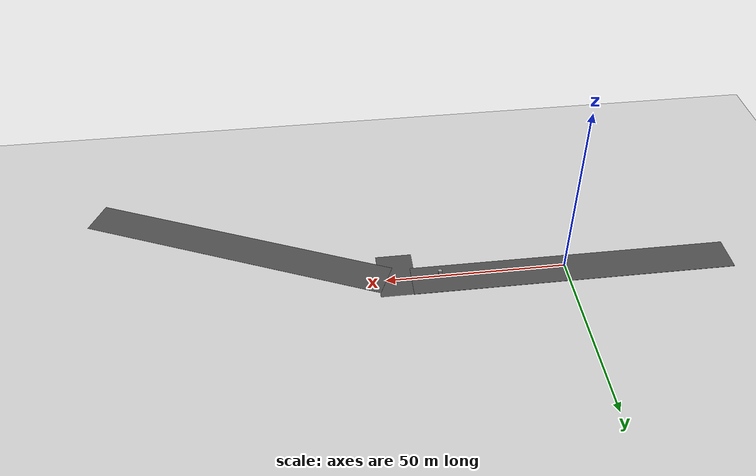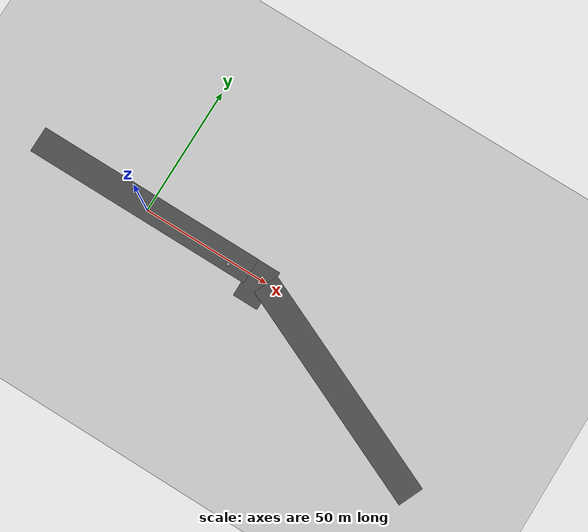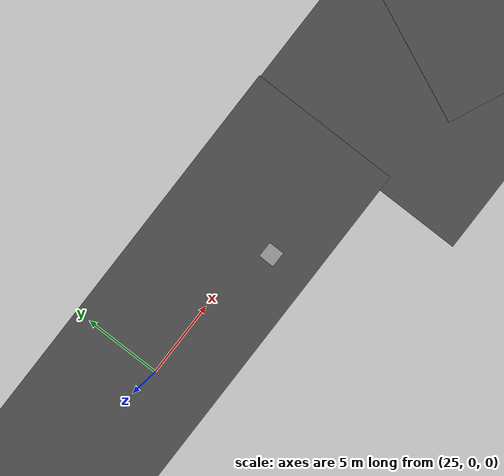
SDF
<sdf version="1.5">
 <world name="default">
  <light name="sun" type="directional">
   <pose>0 0 10 0 -0 0</pose>
   <diffuse>0.8 0.8 0.8 1</diffuse>
   <specular>0.2 0.2 0.2 1</specular>
   <attenuation>
    <range>1000</range>
    <constant>0.9</constant>
    <linear>0.01</linear>
    <quadratic>0.001</quadratic>
   </attenuation>
   <direction>-0.5 0.1 -0.9</direction>
  </light>
  <model name="test_model">
   <pose>34.9085 -1.21494 0.15 1e-06 -0 -0.002851</pose>
   <plugin name="test_plugin" filename="build/libCarPlugin.so"/>
   <link name="box_link">
    <pose>0 0 0.4 0 -0 0</pose>
    <visual name="visual">
     <geometry><box><size>1 1 1</size></box></geometry>
     <material>
      <lighting>1</lighting>
      <script><uri>file://media/materials/scripts/gazebo.material</uri><name>Gazebo/Grey</name></script>
      <ambient>0.3 0.3 0.3 1</ambient>
      <diffuse>0.7 0.7 0.7 1</diffuse>
      <specular>0.01 0.01 0.01 1</specular>
      <emissive>0 0 0 1</emissive>
      <shader type="pixel"/>
     </material>
    </visual>
    <collision name="box_collision">
     <geometry><box><size>1 1 1</size></box></geometry>
     <surface>
      <friction><ode><mu>1</mu><mu2>1</mu2><fdir1>0 0 0</fdir1><slip1>0</slip1><slip2>0</slip2></ode></friction>
      <bounce><restitution_coefficient>0</restitution_coefficient><threshold>1e+06</threshold></bounce>
      <contact>
       <collide_without_contact>0</collide_without_contact>
       <collide_without_contact_bitmask>1</collide_without_contact_bitmask>
       <collide_bitmask>1</collide_bitmask>
       <ode>
        <soft_cfm>0</soft_cfm>
        <soft_erp>0.2</soft_erp>
        <kp>1e+13</kp>
        <kd>1</kd>
        <max_vel>0.01</max_vel>
        <min_depth>0</min_depth>
       </ode>
       <bullet>
        <split_impulse>1</split_impulse>
        <split_impulse_penetration_threshold>-0.01</split_impulse_penetration_threshold>
        <soft_cfm>0</soft_cfm>
        <soft_erp>0.2</soft_erp>
        <kp>1e+13</kp>
        <kd>1</kd>
       </bullet>
      </contact>
     </surface>
    </collision>
    <inertial>
     <inertia><ixx>1</ixx><ixy>0</ixy><ixz>0</ixz><iyy>1</iyy><iyz>0</iyz><izz>1</izz></inertia>
     <mass>1</mass>
    </inertial>
   </link>
   <link name="lidar">
    <sensor name="lidar" type="ray">
     <plugin name="lidar_plugin" filename="build/liblidar.so"/>
     <pose>0.5 0 0.3 0 -0 0</pose>
     <ray>
      <scan>
       <horizontal>
        <samples>640</samples>
        <resolution>1</resolution>
        <min_angle>-1</min_angle>
        <max_angle>1</max_angle>
       </horizontal>
      </scan>
      <range><min>0.8</min><max>15</max><resolution>0.01</resolution></range>
      <noise><type>gaussian</type><mean>0</mean><stddev>0.01</stddev></noise>
     </ray>
     <always_on>1</always_on>
     <update_rate>30</update_rate>
     <visualize>1</visualize>
    </sensor>
    <visual name="lidar_visual">
     <geometry><mesh><uri>model://hokuyo/meshes/hokuyo.dae</uri></mesh></geometry>
     <material>
      <lighting>1</lighting>
      <script><uri>file://media/materials/scripts/gazebo.material</uri><name>Gazebo/Grey</name></script>
      <ambient>0.3 0.3 0.3 1</ambient>
      <diffuse>0.7 0.7 0.7 1</diffuse>
      <specular>0.01 0.01 0.01 1</specular>
      <emissive>0 0 0 1</emissive>
      <shader type="vertex"><normal_map>__default__</normal_map></shader>
     </material>
    </visual>
    <collision name="lidar_collision">
     <geometry><mesh><uri>model://hokuyo/meshes/hokuyo.dae</uri></mesh></geometry>
     <surface>
      <friction><ode><mu>1</mu><mu2>1</mu2><fdir1>0 0 0</fdir1><slip1>0</slip1><slip2>0</slip2></ode></friction>
      <bounce><restitution_coefficient>0</restitution_coefficient><threshold>1e+06</threshold></bounce>
      <contact>
       <collide_without_contact>0</collide_without_contact>
       <collide_without_contact_bitmask>1</collide_without_contact_bitmask>
       <collide_bitmask>1</collide_bitmask>
       <ode>
        <soft_cfm>0</soft_cfm>
        <soft_erp>0.2</soft_erp>
        <kp>1e+13</kp>
        <kd>1</kd>
        <max_vel>0.01</max_vel>
        <min_depth>0</min_depth>
       </ode>
       <bullet>
        <split_impulse>1</split_impulse>
        <split_impulse_penetration_threshold>-0.01</split_impulse_penetration_threshold>
        <soft_cfm>0</soft_cfm>
        <soft_erp>0.2</soft_erp>
        <kp>1e+13</kp>
        <kd>1</kd>
       </bullet>
      </contact>
     </surface>
    </collision>
    <inertial>
     <inertia><ixx>1</ixx><ixy>0</ixy><ixz>0</ixz><iyy>1</iyy><iyz>0</iyz><izz>1</izz></inertia>
     <mass>1</mass>
    </inertial>
   </link>
   <link name="camera_link">
    <pose>0.5 0 0.5 0 -0 0</pose>
    <sensor name="camera" type="multicamera">
     <always_on>1</always_on>
     <update_rate>24</update_rate>
     <visualize>0</visualize>
     <topic>sdcCar_camera</topic>
     <camera name="center">
      <horizontal_fov>1.39626</horizontal_fov>
      <image><width>640</width><height>480</height></image>
      <clip><near>0.1</near><far>100</far></clip>
      <save enabled="0"><path>__default__</path></save>
     </camera>
     <plugin name="camera_plugin" filename="build/libcamera.so"/>
    </sensor>
    <visual name="visual">
     <geometry><box><size>0.05 0.05 0.05</size></box></geometry>
     <material><shader type="pixel"/></material>
    </visual>
    <inertial>
     <inertia><ixx>1</ixx><ixy>0</ixy><ixz>0</ixz><iyy>1</iyy><iyz>0</iyz><izz>1</izz></inertia>
     <mass>1</mass>
    </inertial>
   </link>
   <joint name="camera" type="revolute">
    <parent>box_link</parent>
    <child>camera_link</child>
    <axis>
     <xyz>0 0 1</xyz>
     <use_parent_model_frame>0</use_parent_model_frame>
     <limit><lower>0</lower><upper>0</upper><effort>-1</effort><velocity>-1</velocity></limit>
     <dynamics>
      <spring_reference>0</spring_reference>
      <spring_stiffness>0</spring_stiffness>
      <damping>0</damping>
      <friction>0</friction>
     </dynamics>
     <use_parent_model_frame>1</use_parent_model_frame>
    </axis>
    <physics>
     <ode><limit><cfm>0</cfm><erp>0.2</erp></limit><suspension><cfm>0</cfm><erp>0.2</erp></suspension></ode>
    </physics>
   </joint>
   <joint name="link_1_JOINT_0" type="revolute">
    <parent>box_link</parent>
    <child>lidar</child>
    <axis>
     <xyz>0 0 1</xyz>
     <use_parent_model_frame>0</use_parent_model_frame>
     <limit><lower>0</lower><upper>0</upper><effort>-1</effort><velocity>-1</velocity></limit>
     <dynamics>
      <spring_reference>0</spring_reference>
      <spring_stiffness>0</spring_stiffness>
      <damping>0</damping>
     </dynamics>
     <use_parent_model_frame>1</use_parent_model_frame>
    </axis>
    <physics>
     <ode><limit><cfm>0</cfm><erp>0.2</erp></limit><suspension><cfm>0</cfm><erp>0.2</erp></suspension></ode>
    </physics>
   </joint>
   <static>0</static>
  </model>
  <model name="ground_plane">
   <static>1</static>
   <link name="link">
    <collision name="collision">
     <geometry><plane><normal>0 0 1</normal><size>100 100</size></plane></geometry>
     <surface><friction><ode><mu>100</mu><mu2>50</mu2></ode></friction></surface>
    </collision>
    <visual name="visual">
     <cast_shadows>0</cast_shadows>
     <geometry><plane><normal>0 0 1</normal><size>100 100</size></plane></geometry>
     <material>
      <script><uri>file://media/materials/scripts/gazebo.material</uri><name>Gazebo/Grey</name></script>
     </material>
    </visual>
   </link>
  </model>
  <physics name="default_physics" default="0" type="ode">
   <max_step_size>0.001</max_step_size>
   <real_time_factor>1</real_time_factor>
   <real_time_update_rate>1000</real_time_update_rate>
   <gravity>0 0 -9.8</gravity>
   <magnetic_field>6e-06 2.3e-05 -4.2e-05</magnetic_field>
  </physics>
  <scene><ambient>0.4 0.4 0.4 1</ambient><background>0.7 0.7 0.7 1</background><shadows>1</shadows></scene>
  <spherical_coordinates>
   <surface_model>EARTH_WGS84</surface_model>
   <latitude_deg>0</latitude_deg>
   <longitude_deg>0</longitude_deg>
   <elevation>0</elevation>
   <heading_deg>0</heading_deg>
  </spherical_coordinates>
  <model name="comps_road">
   <static>1</static>
   <link name="link">
    <collision name="collision"><geometry><box><size>90 10 0.1</size></box></geometry></collision>
    <visual name="visual">
     <cast_shadows>0</cast_shadows>
     <geometry><box><size>90 10 0.1</size></box></geometry>
     <material>
      <script>
       <uri>model://comps_road/materials/scripts</uri>
       <uri>model://comps_road/materials/textures</uri>
       <name>comps_road</name>
      </script>
     </material>
    </visual>
   </link>
   <pose>-2 1 0 0 -0 0</pose>
  </model>
  <model name="curved_road_2">
   <static>1</static>
   <link name="link">
    <collision name="collision"><geometry><box><size>10 15.5 0.005</size></box></geometry></collision>
    <visual name="visual">
     <cast_shadows>0</cast_shadows>
     <geometry><box><size>10 15.5 0.005</size></box></geometry>
     <material>
      <script>
       <uri>model://curved_road_2/materials/scripts</uri>
       <uri>model://curved_road_2/materials/textures</uri>
       <name>curved_road_2</name>
      </script>
     </material>
    </visual>
   </link>
   <pose>47 -1.82211 0 0 -0 0</pose>
  </model>
  <audio><device>default</device></audio>
  <model name="comps_road_0_0">
   <static>1</static>
   <link name="link">
    <collision name="collision"><geometry><box><size>90 10 0.05</size></box></geometry></collision>
    <visual name="visual">
     <cast_shadows>0</cast_shadows>
     <geometry><box><size>90 10 0.05</size></box></geometry>
     <material>
      <script>
       <uri>model://comps_road/materials/scripts</uri>
       <uri>model://comps_road/materials/textures</uri>
       <name>comps_road</name>
      </script>
     </material>
    </visual>
   </link>
   <pose>90.9327 -18.4691 0 0 0 -0.417778</pose>
  </model>
 </world>
</sdf>
